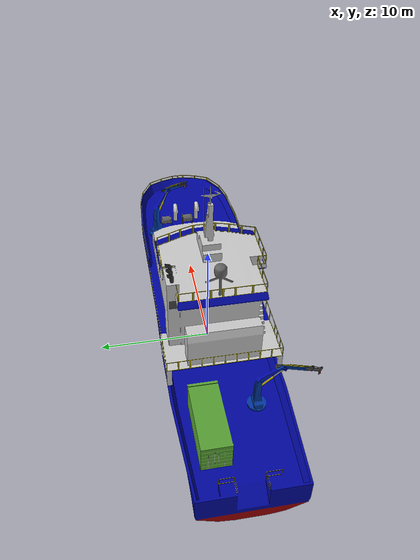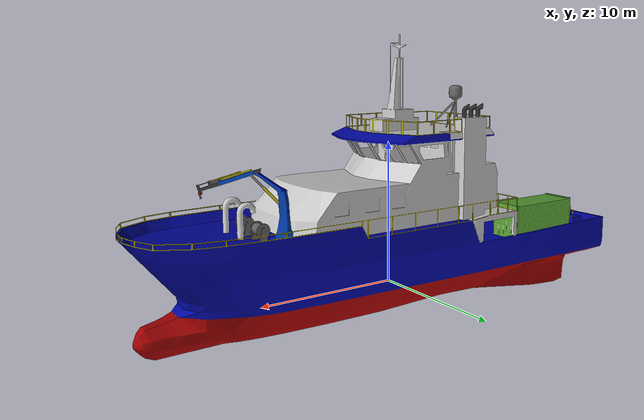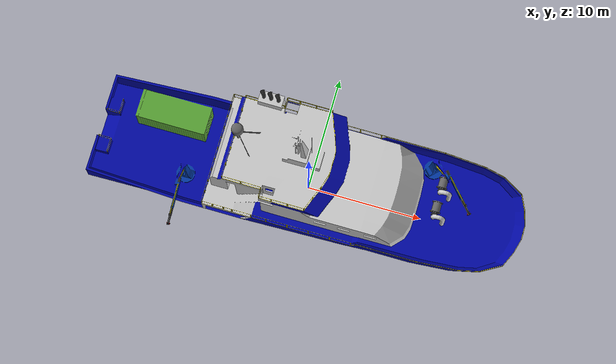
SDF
<?xml version="1.0" ?>
<sdf version="1.5">
  <model name="aurora">
    <static>true</static>
    <link name="link">
      <collision name="aurora_collision">
        <pose>0 0 0 0 0 1.57</pose>
        <geometry>
          <mesh><uri>model://aurora_static/meshes/aurora_collision.stl</uri></mesh>
        </geometry>
      </collision>

      <visual name="aurora_visual">
        <cast_shadows>false</cast_shadows>
        <pose>0 0 0 0 0 1.57</pose>
        <geometry>
          <mesh><uri>model://aurora_static/meshes/aurora.dae</uri></mesh>
        </geometry>
      </visual>
    </link>
  </model>
</sdf>
